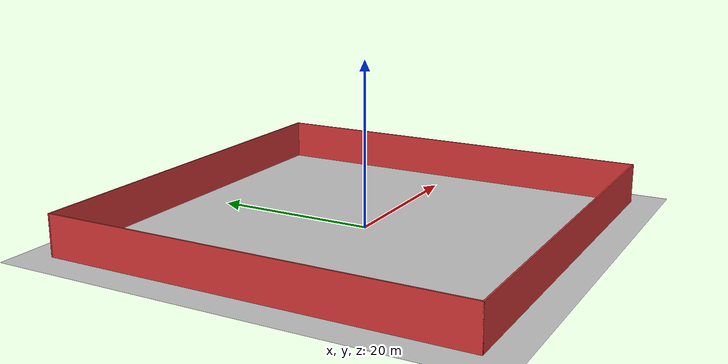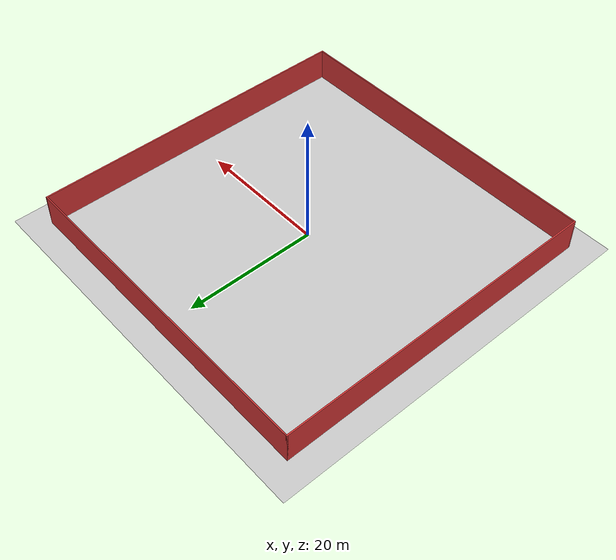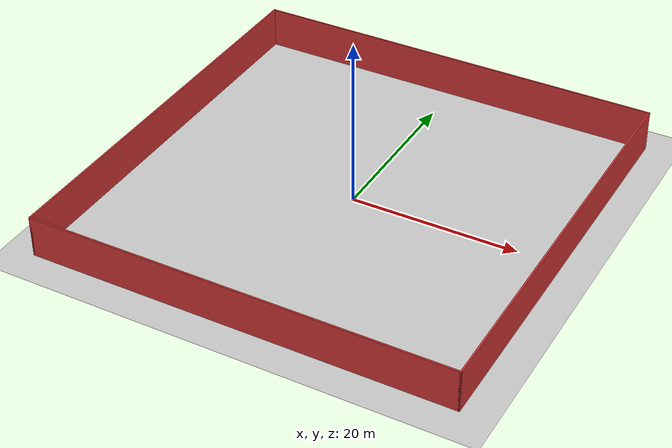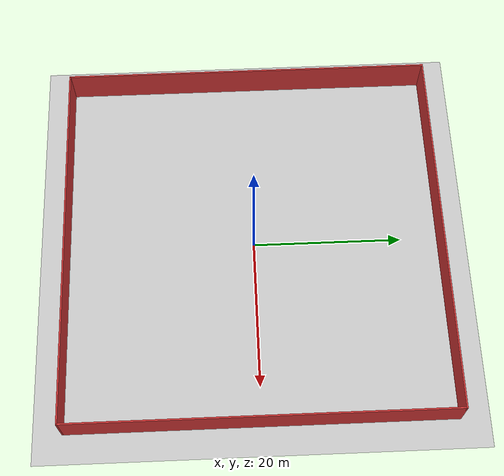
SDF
<sdf version="1.6">
  <world name="my_world">
    <!-- 物理引擎参数  -->
    <physics type="ode">
      <max_step_size>0.001</max_step_size>
      <real_time_factor>1</real_time_factor>
      <real_time_update_rate>1000</real_time_update_rate>
    </physics>

    <!-- 地理坐标系  -->
    <spherical_coordinates>
      <surface_model>EARTH_WGS84</surface_model>
      <latitude_deg>31.23</latitude_deg>
      <longitude_deg>121.47</longitude_deg>
      <elevation>0</elevation>
    </spherical_coordinates>

    <!-- 默认地面模型 [[1][3]] -->
    <model name="ground_plane">
      <static>true</static>
      <link name="link">
        <collision name="collision">
          <geometry>
            <plane>
              <normal>0 0 1</normal>
              <size>50 50</size> <!-- 地面尺寸 -->
            </plane>
          </geometry>
        </collision>
        <visual name="visual">
          <geometry>
            <plane>
              <normal>0 0 1</normal>
              <size>50 50</size>
            </plane>
          </geometry>
          <material>
            <script>
              <uri>file://media/materials/scripts/grid.material</uri>
              <name>Gazebo/Grid</name>
            </script>
          </material>
        </visual>
      </link>
    </model>

    <!-- 环境光照  -->
    <include>
      <uri>model://sun</uri>
    </include>

    <!-- 自定义围墙模型  -->
    <model name="wall_1">
      <static>true</static>
      <link name="link">
        <collision name="collision">
          <geometry>
            <box>
              <size>0.2 50.4 5</size> <!-- 长宽高 -->
            </box>
          </geometry>
        </collision>
        <visual name="visual">
          <geometry>
            <box>
              <size>0.2 50.4 5</size>
            </box>
          </geometry>
          <material>
            <ambient>0.8 0.2 0.2 1</ambient> <!-- RGBA颜色  -->
          </material>
        </visual>
      </link>
      <pose>25.1 0 2.5 0 0 0</pose> <!-- XYZ坐标+欧拉角 -->
    </model>

    <model name="wall_2">
      <static>true</static>
      <link name="link">
        <collision name="collision">
          <geometry>
            <box>
              <size>0.2 50.4 5</size> <!-- 长宽高 -->
            </box>
          </geometry>
        </collision>
        <visual name="visual">
          <geometry>
            <box>
              <size>0.2 50.4 5</size>
            </box>
          </geometry>
          <material>
            <ambient>0.8 0.2 0.2 1</ambient> <!-- RGBA颜色  -->
          </material>
        </visual>
      </link>
      <pose>-25.1 0 2.5 0 0 0</pose> <!-- XYZ坐标+欧拉角 -->
    </model>

    <model name="wall_3">
      <static>true</static>
      <link name="link">
        <collision name="collision">
          <geometry>
            <box>
              <size>50.4 0.2 5</size> <!-- 长宽高 -->
            </box>
          </geometry>
        </collision>
        <visual name="visual">
          <geometry>
            <box>
              <size>50.4 0.2 5</size>
            </box>
          </geometry>
          <material>
            <ambient>0.8 0.2 0.2 1</ambient> <!-- RGBA颜色  -->
          </material>
        </visual>
      </link>
      <pose>0 25.1 2.5 0 0 0</pose> <!-- XYZ坐标+欧拉角 -->
    </model>

    <model name="wall_4">
      <static>true</static>
      <link name="link">
        <collision name="collision">
          <geometry>
            <box>
              <size>50.4 0.2 5</size> <!-- 长宽高 -->
            </box>
          </geometry>
        </collision>
        <visual name="visual">
          <geometry>
            <box>
              <size>50.4 0.2 5</size>
            </box>
          </geometry>
          <material>
            <ambient>0.8 0.2 0.2 1</ambient> <!-- RGBA颜色  -->
          </material>
        </visual>
      </link>
      <pose>0 -25.1 2.5 0 0 0</pose> <!-- XYZ坐标+欧拉角 -->
    </model>
  </world>
</sdf>
